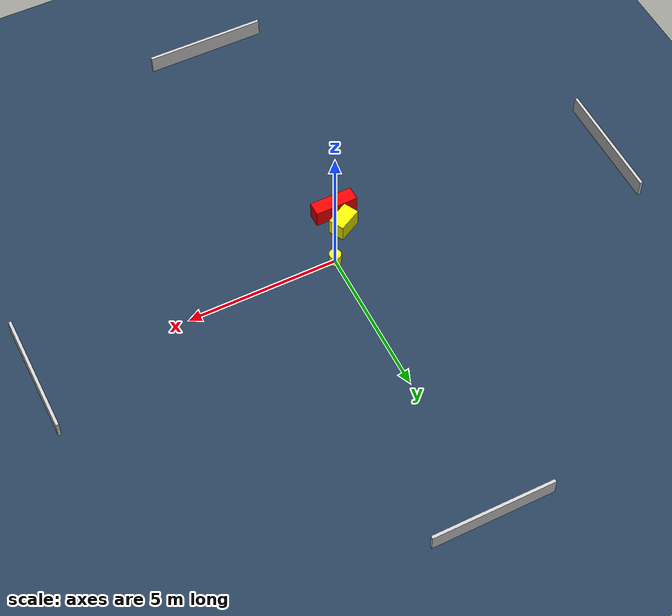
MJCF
<?xml version="1.0" ?>
<mujoco model="generated_environment">
  <option timestep="0.01" integrator="RK4" cone="elliptic"/>
  <default>
    <geom density="1"/>
  </default>
  <asset>
    <texture builtin="gradient" height="3072" name="skybox" rgb1="0.3 0.5 0.7" rgb2="0 0 0" type="skybox" width="512"/>
    <texture builtin="checker" height="300" name="groundplane" rgb1="0.2 0.3 0.4" rgb2="0.1 0.2 0.3" type="2d" width="300"/>
    <material name="groundplane" reflectance="0.2" texrepeat="5 5" texture="groundplane"/>
  </asset>
  <worldbody>
    <light dir="0 0 -1" directional="true" pos="0 0 1.5"/>
    <geom condim="3" friction="0.5 0.005 0.001" material="groundplane" name="floor" pos="0 0 0" size="0 0 0.05" type="plane"/>
    <body name="walls">
      <geom name="wall_1" condim="4" pos="-10.0 0.0 0.3" rgba="0.800000011920929 0.800000011920929 0.800000011920929 1.0" size="0.05 2.0 0.3" type="box"/>
      <geom name="wall_2" condim="4" pos="10.0 0.0 0.3" rgba="0.800000011920929 0.800000011920929 0.800000011920929 1.0" size="0.05 2.0 0.3" type="box"/>
      <geom name="wall_3" condim="4" pos="0.0 -10.0 0.3" rgba="0.800000011920929 0.800000011920929 0.800000011920929 1.0" size="2.0 0.05 0.3" type="box"/>
      <geom name="wall_4" condim="4" pos="0.0 10.0 0.3" rgba="0.800000011920929 0.800000011920929 0.800000011920929 1.0" size="2.0 0.05 0.3" type="box"/>
    </body>
    <body name="robot">
      <joint name="joint_x" type="slide" pos="0 0 0" axis="1 0 0"/>
      <joint name="joint_y" type="slide" pos="0 0 0" axis="0 1 0"/>
      <geom name="robot" type="cylinder" pos="0.0 0.0 0.2" size="0.2 0.2 0.0" mass="5.0" friction="1.0 0.005 0.0001" condim="4" rgba="1.0 1.0 0.0 1.0"/>
    </body>
    <body name="obstacle_1_movable">
      <geom name="obstacle_1_movable" condim="4" pos="-0.8376972855978432 -1.0769042798102033 0.3" euler="0 0 298.21330828201803" friction="0.0 0.005 0.001" rgba="1.0 1.0 0.0 1.0" size="0.2652815945698282 0.42288601596522407 0.3" type="box" mass="0.1"/>
      <joint type="free"/>
    </body>
    <body name="obstacle_2_static">
      <geom name="obstacle_2_static" condim="4" pos="-0.8242689530996037 -1.755896604378079 0.3" euler="0 0 270.7748565508937" friction="0.0 0.005 0.001" rgba="1.0 0.0 0.0 1.0" size="0.23574881658460087 0.7149971733579634 0.3" type="box"/>
    </body>
  </worldbody>
  <actuator>
    <motor name="actuator_x" joint="joint_x" gear="1" ctrlrange="-1 1"/>
    <motor name="actuator_y" joint="joint_y" gear="1" ctrlrange="-1 1"/>
  </actuator>
</mujoco>
